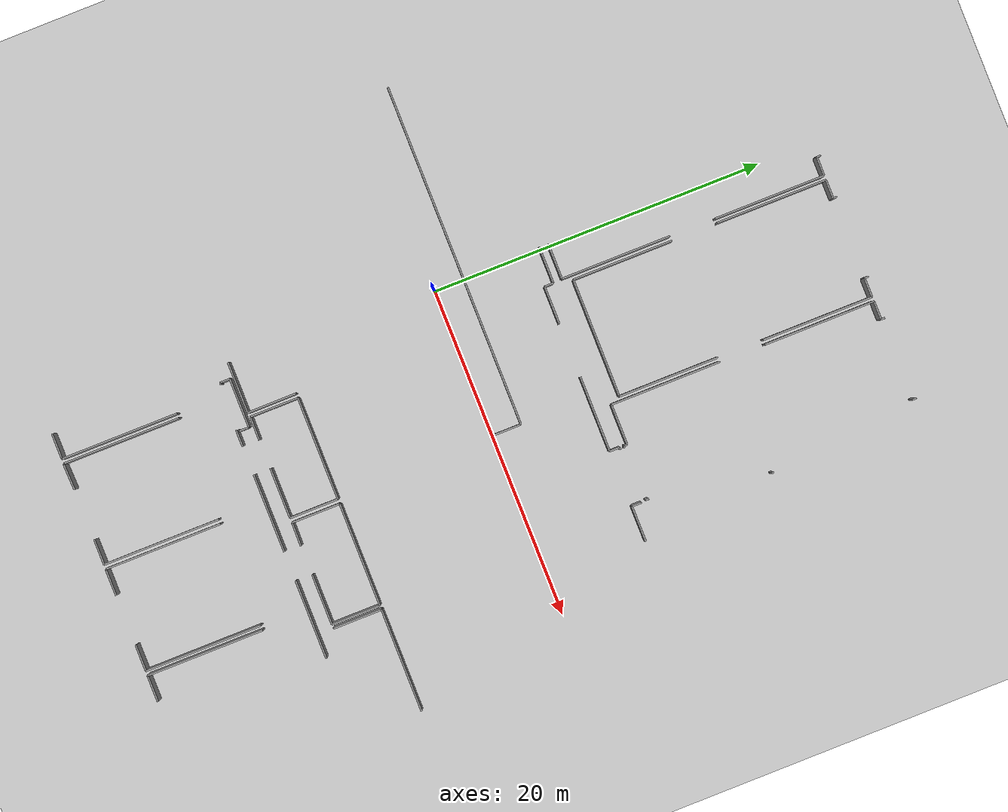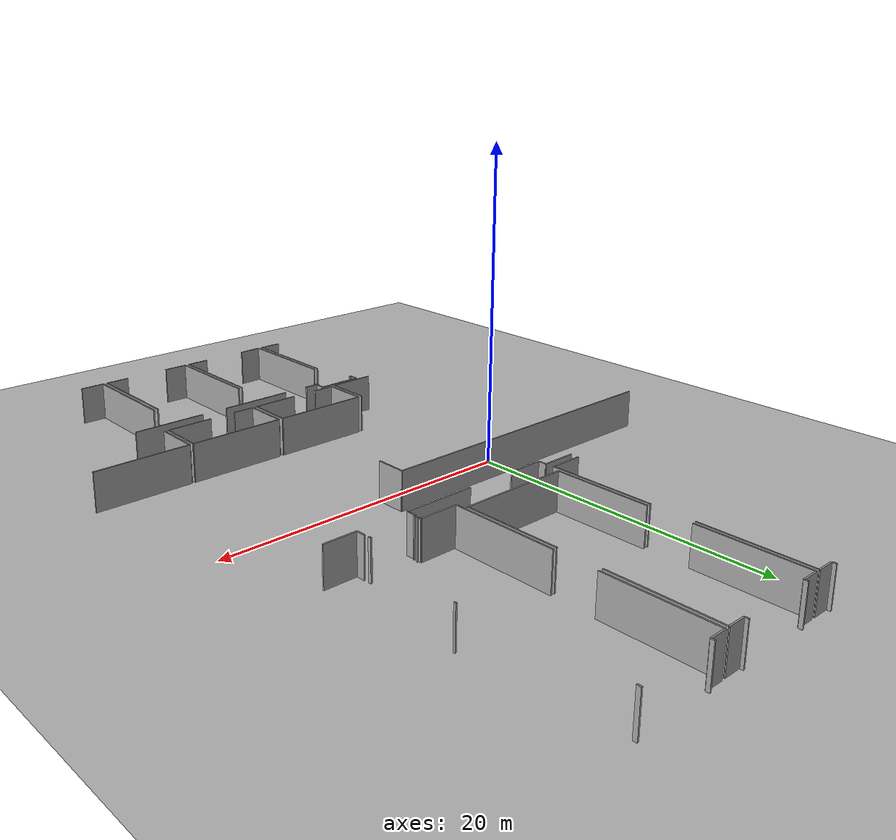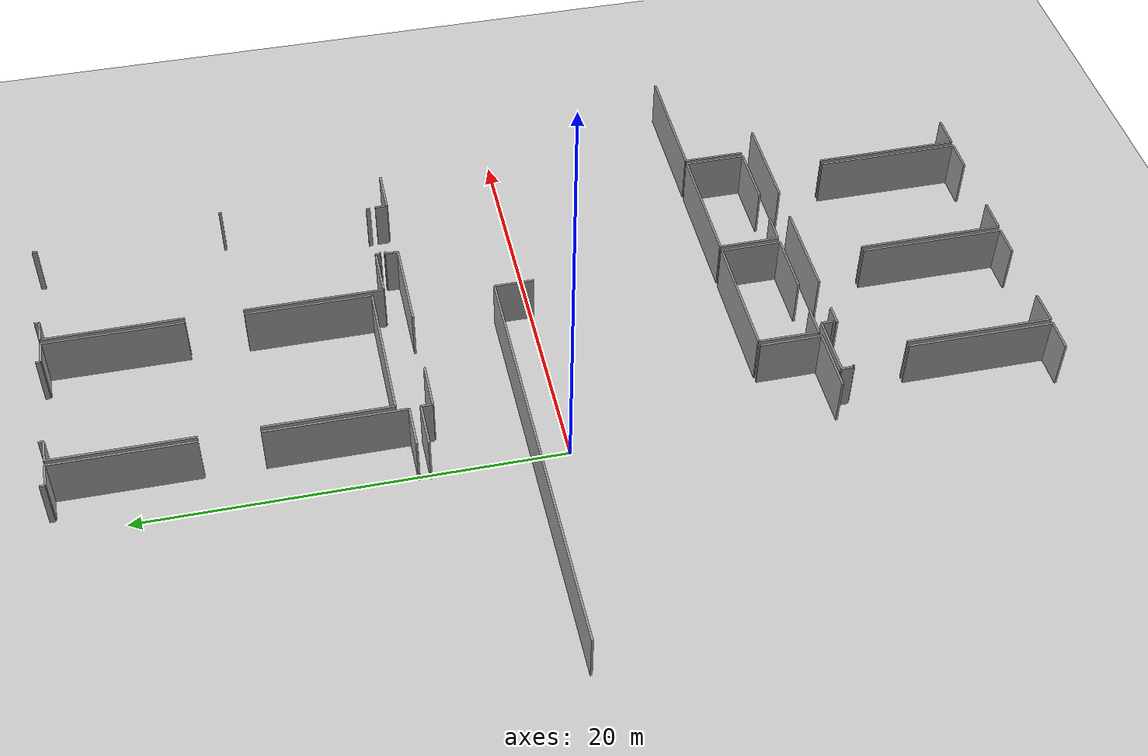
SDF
<sdf version="1.6">
 <world name="default">
  <model name="ground_plane">
   <static>1</static>
   <link name="link">
    <collision name="collision">
     <geometry><plane><normal>0 0 1</normal><size>100 100</size></plane></geometry>
     <surface><friction><ode><mu>100</mu><mu2>50</mu2></ode></friction></surface>
    </collision>
    <visual name="visual">
     <cast_shadows>0</cast_shadows>
     <geometry><plane><normal>0 0 1</normal><size>100 100</size></plane></geometry>
     <material>
      <script><uri>file://media/materials/scripts/gazebo.material</uri><name>Gazebo/Grey</name></script>
     </material>
    </visual>
   </link>
  </model>
  <model name="50045230">
   <static>1</static>
   <link name="Wall_23">
    <collision name="Wall_23_Collision">
     <geometry><box><size>0.13432021024 0.1 2.5</size></box></geometry>
     <pose>0.0671601051202 0 1.25 0 0 0</pose>
    </collision>
    <visual name="Wall_23_Visual">
     <pose>0.0671601051202 0 1.25 0 0 0</pose>
     <geometry><box><size>0.13432021024 0.1 2.5</size></box></geometry>
     <material>
      <script><uri>file://media/materials/scripts/gazebo.material</uri><name>Gazebo/Grey</name></script>
      <ambient>1 1 1 1</ambient>
     </material>
    </visual>
    <pose>63.4967689515 -9.15002475656 0 0 0 -1.57079632679</pose>
   </link>
   <link name="Wall_57">
    <collision name="Wall_57_Collision">
     <geometry><box><size>0.254294311069 0.1 2.5</size></box></geometry>
     <pose>0.127147155535 0 1.25 0 0 0</pose>
    </collision>
    <visual name="Wall_57_Visual">
     <pose>0.127147155535 0 1.25 0 0 0</pose>
     <geometry><box><size>0.254294311069 0.1 2.5</size></box></geometry>
     <material>
      <script><uri>file://media/materials/scripts/gazebo.material</uri><name>Gazebo/Grey</name></script>
      <ambient>1 1 1 1</ambient>
     </material>
    </visual>
    <pose>47.6539667627 -0.000507826881815 0 0 0 -1.57079632679</pose>
   </link>
   <link name="Wall_58">
    <collision name="Wall_58_Collision">
     <geometry><box><size>1.14248352737 0.1 2.5</size></box></geometry>
     <pose>0.571241763683 0 1.25 0 0 0</pose>
    </collision>
    <visual name="Wall_58_Visual">
     <pose>0.571241763683 0 1.25 0 0 0</pose>
     <geometry><box><size>1.14248352737 0.1 2.5</size></box></geometry>
     <material>
      <script><uri>file://media/materials/scripts/gazebo.material</uri><name>Gazebo/Grey</name></script>
      <ambient>1 1 1 1</ambient>
     </material>
    </visual>
    <pose>47.6539667627 -0.254802137951 0 0 0 0.0</pose>
   </link>
   <link name="Wall_59">
    <collision name="Wall_59_Collision">
     <geometry><box><size>6.68528773909 0.1 2.5</size></box></geometry>
     <pose>3.34264386955 0 1.25 0 0 0</pose>
    </collision>
    <visual name="Wall_59_Visual">
     <pose>3.34264386955 0 1.25 0 0 0</pose>
     <geometry><box><size>6.68528773909 0.1 2.5</size></box></geometry>
     <material>
      <script><uri>file://media/materials/scripts/gazebo.material</uri><name>Gazebo/Grey</name></script>
      <ambient>1 1 1 1</ambient>
     </material>
    </visual>
    <pose>48.7964502901 -0.254802137951 0 0 0 -1.57127108843</pose>
   </link>
   <link name="Wall_60">
    <collision name="Wall_60_Collision">
     <geometry><box><size>6.66890956873 0.1 2.5</size></box></geometry>
     <pose>3.33445478436 0 1.25 0 0 0</pose>
    </collision>
    <visual name="Wall_60_Visual">
     <pose>3.33445478436 0 1.25 0 0 0</pose>
     <geometry><box><size>6.66890956873 0.1 2.5</size></box></geometry>
     <material>
      <script><uri>file://media/materials/scripts/gazebo.material</uri><name>Gazebo/Grey</name></script>
      <ambient>1 1 1 1</ambient>
     </material>
    </visual>
    <pose>49.0600124418 -6.92282300964 0 0 0 1.57079632679</pose>
   </link>
   <link name="Wall_61">
    <collision name="Wall_61_Collision">
     <geometry><box><size>1.12788350451 0.1 2.5</size></box></geometry>
     <pose>0.563941752257 0 1.25 0 0 0</pose>
    </collision>
    <visual name="Wall_61_Visual">
     <pose>0.563941752257 0 1.25 0 0 0</pose>
     <geometry><box><size>1.12788350451 0.1 2.5</size></box></geometry>
     <material>
      <script><uri>file://media/materials/scripts/gazebo.material</uri><name>Gazebo/Grey</name></script>
      <ambient>1 1 1 1</ambient>
     </material>
    </visual>
    <pose>49.0600124418 -0.253913440908 0 0 0 0.0</pose>
   </link>
   <link name="Wall_62">
    <collision name="Wall_62_Collision">
     <geometry><box><size>0.233600365635 0.1 2.5</size></box></geometry>
     <pose>0.116800182818 0 1.25 0 0 0</pose>
    </collision>
    <visual name="Wall_62_Visual">
     <pose>0.116800182818 0 1.25 0 0 0</pose>
     <geometry><box><size>0.233600365635 0.1 2.5</size></box></geometry>
     <material>
      <script><uri>file://media/materials/scripts/gazebo.material</uri><name>Gazebo/Grey</name></script>
      <ambient>1 1 1 1</ambient>
     </material>
    </visual>
    <pose>50.1878959463 -0.253913440908 0 0 0 1.57079632679</pose>
   </link>
   <link name="Wall_63">
    <collision name="Wall_63_Collision">
     <geometry><box><size>0.239948201658 0.1 2.5</size></box></geometry>
     <pose>0.119974100829 0 1.25 0 0 0</pose>
    </collision>
    <visual name="Wall_63_Visual">
     <pose>0.119974100829 0 1.25 0 0 0</pose>
     <geometry><box><size>0.239948201658 0.1 2.5</size></box></geometry>
     <material>
      <script><uri>file://media/materials/scripts/gazebo.material</uri><name>Gazebo/Grey</name></script>
      <ambient>1 1 1 1</ambient>
     </material>
    </visual>
    <pose>55.0923610141 -0.0203130752726 0 0 0 -1.57079632679</pose>
   </link>
   <link name="Wall_64">
    <collision name="Wall_64_Collision">
     <geometry><box><size>1.16140007871 0.1 2.5</size></box></geometry>
     <pose>0.580700039357 0 1.25 0 0 0</pose>
    </collision>
    <visual name="Wall_64_Visual">
     <pose>0.580700039357 0 1.25 0 0 0</pose>
     <geometry><box><size>1.16140007871 0.1 2.5</size></box></geometry>
     <material>
      <script><uri>file://media/materials/scripts/gazebo.material</uri><name>Gazebo/Grey</name></script>
      <ambient>1 1 1 1</ambient>
     </material>
    </visual>
    <pose>55.0923610141 -0.260261276931 0 0 0 0.0</pose>
   </link>
   <link name="Wall_65">
    <collision name="Wall_65_Collision">
     <geometry><box><size>6.66256347936 0.1 2.5</size></box></geometry>
     <pose>3.33128173968 0 1.25 0 0 0</pose>
    </collision>
    <visual name="Wall_65_Visual">
     <pose>3.33128173968 0 1.25 0 0 0</pose>
     <geometry><box><size>6.66256347936 0.1 2.5</size></box></geometry>
     <material>
      <script><uri>file://media/materials/scripts/gazebo.material</uri><name>Gazebo/Grey</name></script>
      <ambient>1 1 1 1</ambient>
     </material>
    </visual>
    <pose>56.2537610928 -0.260261276931 0 0 0 -1.57152042583</pose>
   </link>
   <link name="Wall_74">
    <collision name="Wall_74_Collision">
     <geometry><box><size>0.24616908096 0.1 2.5</size></box></geometry>
     <pose>0.12308454048 0 1.25 0 0 0</pose>
    </collision>
    <visual name="Wall_74_Visual">
     <pose>0.12308454048 0 1.25 0 0 0</pose>
     <geometry><box><size>0.24616908096 0.1 2.5</size></box></geometry>
     <material>
      <script><uri>file://media/materials/scripts/gazebo.material</uri><name>Gazebo/Grey</name></script>
      <ambient>1 1 1 1</ambient>
     </material>
    </visual>
    <pose>62.5467518123 -0.266482156233 0 0 0 1.57079632679</pose>
   </link>
   <link name="Wall_75">
    <collision name="Wall_75_Collision">
     <geometry><box><size>0.224459481763 0.1 2.5</size></box></geometry>
     <pose>0.112229740881 0 1.25 0 0 0</pose>
    </collision>
    <visual name="Wall_75_Visual">
     <pose>0.112229740881 0 1.25 0 0 0</pose>
     <geometry><box><size>0.224459481763 0.1 2.5</size></box></geometry>
     <material>
      <script><uri>file://media/materials/scripts/gazebo.material</uri><name>Gazebo/Grey</name></script>
      <ambient>1 1 1 1</ambient>
     </material>
    </visual>
    <pose>57.6242588901 -0.0203130752726 0 0 0 -1.57079632679</pose>
   </link>
   <link name="Wall_76">
    <collision name="Wall_76_Collision">
     <geometry><box><size>1.10185737682 0.1 2.5</size></box></geometry>
     <pose>0.55092868841 0 1.25 0 0 0</pose>
    </collision>
    <visual name="Wall_76_Visual">
     <pose>0.55092868841 0 1.25 0 0 0</pose>
     <geometry><box><size>1.10185737682 0.1 2.5</size></box></geometry>
     <material>
      <script><uri>file://media/materials/scripts/gazebo.material</uri><name>Gazebo/Grey</name></script>
      <ambient>1 1 1 1</ambient>
     </material>
    </visual>
    <pose>57.6242588901 -0.244772557035 0 0 0 3.14159265359</pose>
   </link>
   <link name="Wall_77">
    <collision name="Wall_77_Collision">
     <geometry><box><size>6.69532370318 0.1 2.5</size></box></geometry>
     <pose>3.34766185159 0 1.25 0 0 0</pose>
    </collision>
    <visual name="Wall_77_Visual">
     <pose>3.34766185159 0 1.25 0 0 0</pose>
     <geometry><box><size>6.69532370318 0.1 2.5</size></box></geometry>
     <material>
      <script><uri>file://media/materials/scripts/gazebo.material</uri><name>Gazebo/Grey</name></script>
      <ambient>1 1 1 1</ambient>
     </material>
    </visual>
    <pose>56.5224015133 -0.244772557035 0 0 0 -1.56933625236</pose>
   </link>
   <link name="Wall_113">
    <collision name="Wall_113_Collision">
     <geometry><box><size>6.66941739561 0.1 2.5</size></box></geometry>
     <pose>3.3347086978 0 1.25 0 0 0</pose>
    </collision>
    <visual name="Wall_113_Visual">
     <pose>3.3347086978 0 1.25 0 0 0</pose>
     <geometry><box><size>6.66941739561 0.1 2.5</size></box></geometry>
     <material>
      <script><uri>file://media/materials/scripts/gazebo.material</uri><name>Gazebo/Grey</name></script>
      <ambient>1 1 1 1</ambient>
     </material>
    </visual>
    <pose>56.4990414768 -16.3569769066 0 0 0 1.57079632679</pose>
   </link>
   <link name="Wall_116">
    <collision name="Wall_116_Collision">
     <geometry><box><size>0.20973250219 0.1 2.5</size></box></geometry>
     <pose>0.104866251095 0 1.25 0 0 0</pose>
    </collision>
    <visual name="Wall_116_Visual">
     <pose>0.104866251095 0 1.25 0 0 0</pose>
     <geometry><box><size>0.20973250219 0.1 2.5</size></box></geometry>
     <material>
      <script><uri>file://media/materials/scripts/gazebo.material</uri><name>Gazebo/Grey</name></script>
      <ambient>1 1 1 1</ambient>
     </material>
    </visual>
    <pose>62.2838244442 -16.3459316719 0 0 0 -1.57079632679</pose>
   </link>
   <link name="Wall_117">
    <collision name="Wall_117_Collision">
     <geometry><box><size>0.116927139538 0.1 2.5</size></box></geometry>
     <pose>0.0584635697691 0 1.25 0 0 0</pose>
    </collision>
    <visual name="Wall_117_Visual">
     <pose>0.0584635697691 0 1.25 0 0 0</pose>
     <geometry><box><size>0.116927139538 0.1 2.5</size></box></geometry>
     <material>
      <script><uri>file://media/materials/scripts/gazebo.material</uri><name>Gazebo/Grey</name></script>
      <ambient>1 1 1 1</ambient>
     </material>
    </visual>
    <pose>59.0767707289 -16.5556641741 0 0 0 3.14159265359</pose>
   </link>
   <link name="Wall_118">
    <collision name="Wall_118_Collision">
     <geometry><box><size>0.200083791435 0.1 2.5</size></box></geometry>
     <pose>0.100041895718 0 1.25 0 0 0</pose>
    </collision>
    <visual name="Wall_118_Visual">
     <pose>0.100041895718 0 1.25 0 0 0</pose>
     <geometry><box><size>0.200083791435 0.1 2.5</size></box></geometry>
     <material>
      <script><uri>file://media/materials/scripts/gazebo.material</uri><name>Gazebo/Grey</name></script>
      <ambient>1 1 1 1</ambient>
     </material>
    </visual>
    <pose>58.9598435893 -16.5556641741 0 0 0 1.57079632679</pose>
   </link>
   <link name="Wall_119">
    <collision name="Wall_119_Collision">
     <geometry><box><size>2.46080250883 0.1 2.5</size></box></geometry>
     <pose>1.23040125441 0 1.25 0 0 0</pose>
    </collision>
    <visual name="Wall_119_Visual">
     <pose>1.23040125441 0 1.25 0 0 0</pose>
     <geometry><box><size>2.46080250883 0.1 2.5</size></box></geometry>
     <material>
      <script><uri>file://media/materials/scripts/gazebo.material</uri><name>Gazebo/Grey</name></script>
      <ambient>1 1 1 1</ambient>
     </material>
    </visual>
    <pose>58.9598435893 -16.3555803826 0 0 0 -3.14102514604</pose>
   </link>
   <link name="Wall_120">
    <collision name="Wall_120_Collision">
     <geometry><box><size>6.06078687775 0.1 2.5</size></box></geometry>
     <pose>3.03039343888 0 1.25 0 0 0</pose>
    </collision>
    <visual name="Wall_120_Visual">
     <pose>3.03039343888 0 1.25 0 0 0</pose>
     <geometry><box><size>6.06078687775 0.1 2.5</size></box></geometry>
     <material>
      <script><uri>file://media/materials/scripts/gazebo.material</uri><name>Gazebo/Grey</name></script>
      <ambient>1 1 1 1</ambient>
     </material>
    </visual>
    <pose>49.0582350477 -15.7607881473 0 0 0 1.57079632679</pose>
   </link>
   <link name="Wall_121">
    <collision name="Wall_121_Collision">
     <geometry><box><size>6.0616755748 0.1 2.5</size></box></geometry>
     <pose>3.0308377874 0 1.25 0 0 0</pose>
    </collision>
    <visual name="Wall_121_Visual">
     <pose>3.0308377874 0 1.25 0 0 0</pose>
     <geometry><box><size>6.0616755748 0.1 2.5</size></box></geometry>
     <material>
      <script><uri>file://media/materials/scripts/gazebo.material</uri><name>Gazebo/Grey</name></script>
      <ambient>1 1 1 1</ambient>
     </material>
    </visual>
    <pose>56.2297662727 -9.70000126957 0 0 0 -1.57079632679</pose>
   </link>
   <link name="Wall_122">
    <collision name="Wall_122_Collision">
     <geometry><box><size>7.17153128007 0.1 2.5</size></box></geometry>
     <pose>3.58576564003 0 1.25 0 0 0</pose>
    </collision>
    <visual name="Wall_122_Visual">
     <pose>3.58576564003 0 1.25 0 0 0</pose>
     <geometry><box><size>7.17153128007 0.1 2.5</size></box></geometry>
     <material>
      <script><uri>file://media/materials/scripts/gazebo.material</uri><name>Gazebo/Grey</name></script>
      <ambient>1 1 1 1</ambient>
     </material>
    </visual>
    <pose>56.2297662727 -15.7616768444 0 0 0 3.14146873347</pose>
   </link>
   <link name="Wall_124">
    <collision name="Wall_124_Collision">
     <geometry><box><size>6.64567648888 0.1 2.5</size></box></geometry>
     <pose>3.32283824444 0 1.25 0 0 0</pose>
    </collision>
    <visual name="Wall_124_Visual">
     <pose>3.32283824444 0 1.25 0 0 0</pose>
     <geometry><box><size>6.64567648888 0.1 2.5</size></box></geometry>
     <material>
      <script><uri>file://media/materials/scripts/gazebo.material</uri><name>Gazebo/Grey</name></script>
      <ambient>1 1 1 1</ambient>
     </material>
    </visual>
    <pose>48.7757563447 -9.70000126957 0 0 0 -1.57079632679</pose>
   </link>
   <link name="Wall_125">
    <collision name="Wall_125_Collision">
     <geometry><box><size>2.13693551868 0.1 2.5</size></box></geometry>
     <pose>1.06846775934 0 1.25 0 0 0</pose>
    </collision>
    <visual name="Wall_125_Visual">
     <pose>1.06846775934 0 1.25 0 0 0</pose>
     <geometry><box><size>2.13693551868 0.1 2.5</size></box></geometry>
     <material>
      <script><uri>file://media/materials/scripts/gazebo.material</uri><name>Gazebo/Grey</name></script>
      <ambient>1 1 1 1</ambient>
     </material>
    </visual>
    <pose>48.7757563447 -16.3456777585 0 0 0 3.14159265359</pose>
   </link>
   <link name="Wall_238">
    <collision name="Wall_238_Collision">
     <geometry><box><size>0.98721545825 0.1 2.5</size></box></geometry>
     <pose>0.493607729125 0 1.25 0 0 0</pose>
    </collision>
    <visual name="Wall_238_Visual">
     <pose>0.493607729125 0 1.25 0 0 0</pose>
     <geometry><box><size>0.98721545825 0.1 2.5</size></box></geometry>
     <material>
      <script><uri>file://media/materials/scripts/gazebo.material</uri><name>Gazebo/Grey</name></script>
      <ambient>1 1 1 1</ambient>
     </material>
    </visual>
    <pose>49.9840034532 -36.8174489317 0 0 0 0.0</pose>
   </link>
   <link name="Wall_239">
    <collision name="Wall_239_Collision">
     <geometry><box><size>4.73269262508 0.1 2.5</size></box></geometry>
     <pose>2.36634631254 0 1.25 0 0 0</pose>
    </collision>
    <visual name="Wall_239_Visual">
     <pose>2.36634631254 0 1.25 0 0 0</pose>
     <geometry><box><size>4.73269262508 0.1 2.5</size></box></geometry>
     <material>
      <script><uri>file://media/materials/scripts/gazebo.material</uri><name>Gazebo/Grey</name></script>
      <ambient>1 1 1 1</ambient>
     </material>
    </visual>
    <pose>52.7162390341 -36.8174489317 0 0 0 0.0</pose>
   </link>
   <link name="Wall_240">
    <collision name="Wall_240_Collision">
     <geometry><box><size>4.76646311272 0.1 2.5</size></box></geometry>
     <pose>2.38323155636 0 1.25 0 0 0</pose>
    </collision>
    <visual name="Wall_240_Visual">
     <pose>2.38323155636 0 1.25 0 0 0</pose>
     <geometry><box><size>4.76646311272 0.1 2.5</size></box></geometry>
     <material>
      <script><uri>file://media/materials/scripts/gazebo.material</uri><name>Gazebo/Grey</name></script>
      <ambient>1 1 1 1</ambient>
     </material>
    </visual>
    <pose>59.2269605292 -36.8174489317 0 0 0 0.0</pose>
   </link>
   <link name="Wall_256">
    <collision name="Wall_256_Collision">
     <geometry><box><size>7.06831541128 0.1 2.5</size></box></geometry>
     <pose>3.53415770564 0 1.25 0 0 0</pose>
    </collision>
    <visual name="Wall_256_Visual">
     <pose>3.53415770564 0 1.25 0 0 0</pose>
     <geometry><box><size>7.06831541128 0.1 2.5</size></box></geometry>
     <material>
      <script><uri>file://media/materials/scripts/gazebo.material</uri><name>Gazebo/Grey</name></script>
      <ambient>1 1 1 1</ambient>
     </material>
    </visual>
    <pose>47.8587479528 -39.6037680755 0 0 0 -1.57079632679</pose>
   </link>
   <link name="Wall_257">
    <collision name="Wall_257_Collision">
     <geometry><box><size>1.54937981642 0.1 2.5</size></box></geometry>
     <pose>0.77468990821 0 1.25 0 0 0</pose>
    </collision>
    <visual name="Wall_257_Visual">
     <pose>0.77468990821 0 1.25 0 0 0</pose>
     <geometry><box><size>1.54937981642 0.1 2.5</size></box></geometry>
     <material>
      <script><uri>file://media/materials/scripts/gazebo.material</uri><name>Gazebo/Grey</name></script>
      <ambient>1 1 1 1</ambient>
     </material>
    </visual>
    <pose>47.8587479528 -46.6720834867 0 0 0 3.14159265359</pose>
   </link>
   <link name="Wall_259">
    <collision name="Wall_259_Collision">
     <geometry><box><size>7.08418500133 0.1 2.5</size></box></geometry>
     <pose>3.54209250067 0 1.25 0 0 0</pose>
    </collision>
    <visual name="Wall_259_Visual">
     <pose>3.54209250067 0 1.25 0 0 0</pose>
     <geometry><box><size>7.08418500133 0.1 2.5</size></box></geometry>
     <material>
      <script><uri>file://media/materials/scripts/gazebo.material</uri><name>Gazebo/Grey</name></script>
      <ambient>1 1 1 1</ambient>
     </material>
    </visual>
    <pose>48.1419883962 -46.694681783 0 0 0 1.57079632679</pose>
   </link>
   <link name="Wall_260">
    <collision name="Wall_260_Collision">
     <geometry><box><size>7.03860753869 0.1 2.5</size></box></geometry>
     <pose>3.51930376935 0 1.25 0 0 0</pose>
    </collision>
    <visual name="Wall_260_Visual">
     <pose>3.51930376935 0 1.25 0 0 0</pose>
     <geometry><box><size>7.03860753869 0.1 2.5</size></box></geometry>
     <material>
      <script><uri>file://media/materials/scripts/gazebo.material</uri><name>Gazebo/Grey</name></script>
      <ambient>1 1 1 1</ambient>
     </material>
    </visual>
    <pose>54.360328564 -39.6104967816 0 0 0 -1.57079632679</pose>
   </link>
   <link name="Wall_261">
    <collision name="Wall_261_Collision">
     <geometry><box><size>1.5443015476 0.1 2.5</size></box></geometry>
     <pose>0.772150773801 0 1.25 0 0 0</pose>
    </collision>
    <visual name="Wall_261_Visual">
     <pose>0.772150773801 0 1.25 0 0 0</pose>
     <geometry><box><size>1.5443015476 0.1 2.5</size></box></geometry>
     <material>
      <script><uri>file://media/materials/scripts/gazebo.material</uri><name>Gazebo/Grey</name></script>
      <ambient>1 1 1 1</ambient>
     </material>
    </visual>
    <pose>54.360328564 -46.6491043203 0 0 0 3.14159265359</pose>
   </link>
   <link name="Wall_262">
    <collision name="Wall_262_Collision">
     <geometry><box><size>1.59446621252 0.1 2.5</size></box></geometry>
     <pose>0.797233106262 0 1.25 0 0 0</pose>
    </collision>
    <visual name="Wall_262_Visual">
     <pose>0.797233106262 0 1.25 0 0 0</pose>
     <geometry><box><size>1.59446621252 0.1 2.5</size></box></geometry>
     <material>
      <script><uri>file://media/materials/scripts/gazebo.material</uri><name>Gazebo/Grey</name></script>
      <ambient>1 1 1 1</ambient>
     </material>
    </visual>
    <pose>49.7358030647 -46.6491043203 0 0 0 -3.11300398148</pose>
   </link>
   <link name="Wall_263">
    <collision name="Wall_263_Collision">
     <geometry><box><size>1.58975205352 0.1 2.5</size></box></geometry>
     <pose>0.794876026762 0 1.25 0 0 0</pose>
    </collision>
    <visual name="Wall_263_Visual">
     <pose>0.794876026762 0 1.25 0 0 0</pose>
     <geometry><box><size>1.58975205352 0.1 2.5</size></box></geometry>
     <material>
      <script><uri>file://media/materials/scripts/gazebo.material</uri><name>Gazebo/Grey</name></script>
      <ambient>1 1 1 1</ambient>
     </material>
    </visual>
    <pose>60.8818413803 -46.6610382521 0 0 0 3.14159265359</pose>
   </link>
   <link name="Wall_264">
    <collision name="Wall_264_Collision">
     <geometry><box><size>1.61184252288 0.1 2.5</size></box></geometry>
     <pose>0.805921261442 0 1.25 0 0 0</pose>
    </collision>
    <visual name="Wall_264_Visual">
     <pose>0.805921261442 0 1.25 0 0 0</pose>
     <geometry><box><size>1.61184252288 0.1 2.5</size></box></geometry>
     <material>
      <script><uri>file://media/materials/scripts/gazebo.material</uri><name>Gazebo/Grey</name></script>
      <ambient>1 1 1 1</ambient>
     </material>
    </visual>
    <pose>56.2451280359 -46.6610382521 0 0 0 3.14159265359</pose>
   </link>
   <link name="Wall_265">
    <collision name="Wall_265_Collision">
     <geometry><box><size>7.06069800805 0.1 2.5</size></box></geometry>
     <pose>3.53034900402 0 1.25 0 0 0</pose>
    </collision>
    <visual name="Wall_265_Visual">
     <pose>3.53034900402 0 1.25 0 0 0</pose>
     <geometry><box><size>7.06069800805 0.1 2.5</size></box></geometry>
     <material>
      <script><uri>file://media/materials/scripts/gazebo.material</uri><name>Gazebo/Grey</name></script>
      <ambient>1 1 1 1</ambient>
     </material>
    </visual>
    <pose>54.633285513 -46.6610382521 0 0 0 1.57079632679</pose>
   </link>
   <link name="Wall_266">
    <collision name="Wall_266_Collision">
     <geometry><box><size>7.06070042323 0.1 2.5</size></box></geometry>
     <pose>3.53035021161 0 1.25 0 0 0</pose>
    </collision>
    <visual name="Wall_266_Visual">
     <pose>3.53035021161 0 1.25 0 0 0</pose>
     <geometry><box><size>7.06070042323 0.1 2.5</size></box></geometry>
     <material>
      <script><uri>file://media/materials/scripts/gazebo.material</uri><name>Gazebo/Grey</name></script>
      <ambient>1 1 1 1</ambient>
     </material>
    </visual>
    <pose>60.8760013711 -39.600340244 0 0 0 -1.569969212</pose>
   </link>
   <link name="Wall_268">
    <collision name="Wall_268_Collision">
     <geometry><box><size>1.59356075514 0.1 2.5</size></box></geometry>
     <pose>0.796780377569 0 1.25 0 0 0</pose>
    </collision>
    <visual name="Wall_268_Visual">
     <pose>0.796780377569 0 1.25 0 0 0</pose>
     <geometry><box><size>1.59356075514 0.1 2.5</size></box></geometry>
     <material>
      <script><uri>file://media/materials/scripts/gazebo.material</uri><name>Gazebo/Grey</name></script>
      <ambient>1 1 1 1</ambient>
     </material>
    </visual>
    <pose>62.757626925 -46.6699252225 0 0 0 3.14159265359</pose>
   </link>
   <link name="Wall_269">
    <collision name="Wall_269_Collision">
     <geometry><box><size>7.05815887364 0.1 2.5</size></box></geometry>
     <pose>3.52907943682 0 1.25 0 0 0</pose>
    </collision>
    <visual name="Wall_269_Visual">
     <pose>3.52907943682 0 1.25 0 0 0</pose>
     <geometry><box><size>7.05815887364 0.1 2.5</size></box></geometry>
     <material>
      <script><uri>file://media/materials/scripts/gazebo.material</uri><name>Gazebo/Grey</name></script>
      <ambient>1 1 1 1</ambient>
     </material>
    </visual>
    <pose>61.1640661698 -46.6699252225 0 0 0 1.57079632679</pose>
   </link>
   <link name="Wall_306">
    <collision name="Wall_306_Collision">
     <geometry><box><size>2.96075767771 0.1 2.5</size></box></geometry>
     <pose>1.48037883885 0 1.25 0 0 0</pose>
    </collision>
    <visual name="Wall_306_Visual">
     <pose>1.48037883885 0 1.25 0 0 0</pose>
     <geometry><box><size>2.96075767771 0.1 2.5</size></box></geometry>
     <material>
      <script><uri>file://media/materials/scripts/gazebo.material</uri><name>Gazebo/Grey</name></script>
      <ambient>1 1 1 1</ambient>
     </material>
    </visual>
    <pose>62.5598283545 -35.8221082433 0 0 0 1.57079632679</pose>
   </link>
   <link name="Wall_307">
    <collision name="Wall_307_Collision">
     <geometry><box><size>6.23751063263 0.1 2.5</size></box></geometry>
     <pose>3.11875531631 0 1.25 0 0 0</pose>
    </collision>
    <visual name="Wall_307_Visual">
     <pose>3.11875531631 0 1.25 0 0 0</pose>
     <geometry><box><size>6.23751063263 0.1 2.5</size></box></geometry>
     <material>
      <script><uri>file://media/materials/scripts/gazebo.material</uri><name>Gazebo/Grey</name></script>
      <ambient>1 1 1 1</ambient>
     </material>
    </visual>
    <pose>62.5598283545 -32.8613505656 0 0 0 0.0</pose>
   </link>
   <link name="Wall_311">
    <collision name="Wall_311_Collision">
     <geometry><box><size>2.92559066614 0.1 2.5</size></box></geometry>
     <pose>1.46279533307 0 1.25 0 0 0</pose>
    </collision>
    <visual name="Wall_311_Visual">
     <pose>1.46279533307 0 1.25 0 0 0</pose>
     <geometry><box><size>2.92559066614 0.1 2.5</size></box></geometry>
     <material>
      <script><uri>file://media/materials/scripts/gazebo.material</uri><name>Gazebo/Grey</name></script>
      <ambient>1 1 1 1</ambient>
     </material>
    </visual>
    <pose>56.0685312377 -35.7869412317 0 0 0 1.57079632679</pose>
   </link>
   <link name="Wall_312">
    <collision name="Wall_312_Collision">
     <geometry><box><size>6.24754021354 0.1 2.5</size></box></geometry>
     <pose>3.12377010677 0 1.25 0 0 0</pose>
    </collision>
    <visual name="Wall_312_Visual">
     <pose>3.12377010677 0 1.25 0 0 0</pose>
     <geometry><box><size>6.24754021354 0.1 2.5</size></box></geometry>
     <material>
      <script><uri>file://media/materials/scripts/gazebo.material</uri><name>Gazebo/Grey</name></script>
      <ambient>1 1 1 1</ambient>
     </material>
    </visual>
    <pose>56.0685312377 -32.8613505656 0 0 0 0.0</pose>
   </link>
   <link name="Wall_313">
    <collision name="Wall_313_Collision">
     <geometry><box><size>2.94717330862 0.1 2.5</size></box></geometry>
     <pose>1.47358665431 0 1.25 0 0 0</pose>
    </collision>
    <visual name="Wall_313_Visual">
     <pose>1.47358665431 0 1.25 0 0 0</pose>
     <geometry><box><size>2.94717330862 0.1 2.5</size></box></geometry>
     <material>
      <script><uri>file://media/materials/scripts/gazebo.material</uri><name>Gazebo/Grey</name></script>
      <ambient>1 1 1 1</ambient>
     </material>
    </visual>
    <pose>62.3160714512 -32.8613505656 0 0 0 -1.57079632679</pose>
   </link>
   <link name="Wall_314">
    <collision name="Wall_314_Collision">
     <geometry><box><size>3.06232305407 0.1 2.5</size></box></geometry>
     <pose>1.53116152704 0 1.25 0 0 0</pose>
    </collision>
    <visual name="Wall_314_Visual">
     <pose>1.53116152704 0 1.25 0 0 0</pose>
     <geometry><box><size>3.06232305407 0.1 2.5</size></box></geometry>
     <material>
      <script><uri>file://media/materials/scripts/gazebo.material</uri><name>Gazebo/Grey</name></script>
      <ambient>1 1 1 1</ambient>
     </material>
    </visual>
    <pose>62.3160714512 -35.8085238742 0 0 0 3.14159265359</pose>
   </link>
   <link name="Wall_315">
    <collision name="Wall_315_Collision">
     <geometry><box><size>1.42233294069 0.1 2.5</size></box></geometry>
     <pose>0.711166470347 0 1.25 0 0 0</pose>
    </collision>
    <visual name="Wall_315_Visual">
     <pose>0.711166470347 0 1.25 0 0 0</pose>
     <geometry><box><size>1.42233294069 0.1 2.5</size></box></geometry>
     <material>
      <script><uri>file://media/materials/scripts/gazebo.material</uri><name>Gazebo/Grey</name></script>
      <ambient>1 1 1 1</ambient>
     </material>
    </visual>
    <pose>57.4907004202 -35.8085238742 0 0 0 3.12641795701</pose>
   </link>
   <link name="Wall_316">
    <collision name="Wall_316_Collision">
     <geometry><box><size>2.92559066614 0.1 2.5</size></box></geometry>
     <pose>1.46279533307 0 1.25 0 0 0</pose>
    </collision>
    <visual name="Wall_316_Visual">
     <pose>1.46279533307 0 1.25 0 0 0</pose>
     <geometry><box><size>2.92559066614 0.1 2.5</size></box></geometry>
     <material>
      <script><uri>file://media/materials/scripts/gazebo.material</uri><name>Gazebo/Grey</name></script>
      <ambient>1 1 1 1</ambient>
     </material>
    </visual>
    <pose>49.5660619295 -35.7869412317 0 0 0 1.57079632679</pose>
   </link>
   <link name="Wall_317">
    <collision name="Wall_317_Collision">
     <geometry><box><size>6.21542016327 0.1 2.5</size></box></geometry>
     <pose>3.10771008163 0 1.25 0 0 0</pose>
    </collision>
    <visual name="Wall_317_Visual">
     <pose>3.10771008163 0 1.25 0 0 0</pose>
     <geometry><box><size>6.21542016327 0.1 2.5</size></box></geometry>
     <material>
      <script><uri>file://media/materials/scripts/gazebo.material</uri><name>Gazebo/Grey</name></script>
      <ambient>1 1 1 1</ambient>
     </material>
    </visual>
    <pose>49.5660619295 -32.8613505656 0 0 0 0.0</pose>
   </link>
   <link name="Wall_318">
    <collision name="Wall_318_Collision">
     <geometry><box><size>2.93663590082 0.1 2.5</size></box></geometry>
     <pose>1.46831795041 0 1.25 0 0 0</pose>
    </collision>
    <visual name="Wall_318_Visual">
     <pose>1.46831795041 0 1.25 0 0 0</pose>
     <geometry><box><size>2.93663590082 0.1 2.5</size></box></geometry>
     <material>
      <script><uri>file://media/materials/scripts/gazebo.material</uri><name>Gazebo/Grey</name></script>
      <ambient>1 1 1 1</ambient>
     </material>
    </visual>
    <pose>55.7814820928 -32.8613505656 0 0 0 -1.57079632679</pose>
   </link>
   <link name="Wall_319">
    <collision name="Wall_319_Collision">
     <geometry><box><size>3.04962738203 0.1 2.5</size></box></geometry>
     <pose>1.52481369101 0 1.25 0 0 0</pose>
    </collision>
    <visual name="Wall_319_Visual">
     <pose>1.52481369101 0 1.25 0 0 0</pose>
     <geometry><box><size>3.04962738203 0.1 2.5</size></box></geometry>
     <material>
      <script><uri>file://media/materials/scripts/gazebo.material</uri><name>Gazebo/Grey</name></script>
      <ambient>1 1 1 1</ambient>
     </material>
    </visual>
    <pose>55.7814820928 -35.7979864664 0 0 0 3.14159265359</pose>
   </link>
   <link name="Wall_320">
    <collision name="Wall_320_Collision">
     <geometry><box><size>1.42233902601 0.1 2.5</size></box></geometry>
     <pose>0.711169513007 0 1.25 0 0 0</pose>
    </collision>
    <visual name="Wall_320_Visual">
     <pose>0.711169513007 0 1.25 0 0 0</pose>
     <geometry><box><size>1.42233902601 0.1 2.5</size></box></geometry>
     <material>
      <script><uri>file://media/materials/scripts/gazebo.material</uri><name>Gazebo/Grey</name></script>
      <ambient>1 1 1 1</ambient>
     </material>
    </visual>
    <pose>50.9883580687 -35.7979864664 0 0 0 3.13382703267</pose>
   </link>
   <link name="Wall_321">
    <collision name="Wall_321_Collision">
     <geometry><box><size>3.09076135945 0.1 2.5</size></box></geometry>
     <pose>1.54538067973 0 1.25 0 0 0</pose>
    </collision>
    <visual name="Wall_321_Visual">
     <pose>1.54538067973 0 1.25 0 0 0</pose>
     <geometry><box><size>3.09076135945 0.1 2.5</size></box></geometry>
     <material>
      <script><uri>file://media/materials/scripts/gazebo.material</uri><name>Gazebo/Grey</name></script>
      <ambient>1 1 1 1</ambient>
     </material>
    </visual>
    <pose>49.3030076047 -35.8367082662 0 0 0 3.14159265359</pose>
   </link>
   <link name="Wall_325">
    <collision name="Wall_325_Collision">
     <geometry><box><size>2.97538988107 0.1 2.5</size></box></geometry>
     <pose>1.48769494053 0 1.25 0 0 0</pose>
    </collision>
    <visual name="Wall_325_Visual">
     <pose>1.48769494053 0 1.25 0 0 0</pose>
     <geometry><box><size>2.97538988107 0.1 2.5</size></box></geometry>
     <material>
      <script><uri>file://media/materials/scripts/gazebo.material</uri><name>Gazebo/Grey</name></script>
      <ambient>1 1 1 1</ambient>
     </material>
    </visual>
    <pose>49.2891693222 -32.8613505656 0 0 0 -1.566145396</pose>
   </link>
   <link name="Wall_369">
    <collision name="Wall_369_Collision">
     <geometry><box><size>2.21894956009 0.1 2.5</size></box></geometry>
     <pose>1.10947478005 0 1.25 0 0 0</pose>
    </collision>
    <visual name="Wall_369_Visual">
     <pose>1.10947478005 0 1.25 0 0 0</pose>
     <geometry><box><size>2.21894956009 0.1 2.5</size></box></geometry>
     <material>
      <script><uri>file://media/materials/scripts/gazebo.material</uri><name>Gazebo/Grey</name></script>
      <ambient>1 1 1 1</ambient>
     </material>
    </visual>
    <pose>46.607462516 -16.8868942577 0 0 0 0.0</pose>
   </link>
   <link name="Wall_370">
    <collision name="Wall_370_Collision">
     <geometry><box><size>0.540962585854 0.1 2.5</size></box></geometry>
     <pose>0.270481292927 0 1.25 0 0 0</pose>
    </collision>
    <visual name="Wall_370_Visual">
     <pose>0.270481292927 0 1.25 0 0 0</pose>
     <geometry><box><size>0.540962585854 0.1 2.5</size></box></geometry>
     <material>
      <script><uri>file://media/materials/scripts/gazebo.material</uri><name>Gazebo/Grey</name></script>
      <ambient>1 1 1 1</ambient>
     </material>
    </visual>
    <pose>48.8264120761 -16.8868942577 0 0 0 -1.57079632679</pose>
   </link>
   <link name="Wall_371">
    <collision name="Wall_371_Collision">
     <geometry><box><size>2.29626620285 0.1 2.5</size></box></geometry>
     <pose>1.14813310143 0 1.25 0 0 0</pose>
    </collision>
    <visual name="Wall_371_Visual">
     <pose>1.14813310143 0 1.25 0 0 0</pose>
     <geometry><box><size>2.29626620285 0.1 2.5</size></box></geometry>
     <material>
      <script><uri>file://media/materials/scripts/gazebo.material</uri><name>Gazebo/Grey</name></script>
      <ambient>1 1 1 1</ambient>
     </material>
    </visual>
    <pose>48.8264120761 -17.4278568436 0 0 0 0.0</pose>
   </link>
   <link name="Wall_372">
    <collision name="Wall_372_Collision">
     <geometry><box><size>4.55596887021 0.1 2.5</size></box></geometry>
     <pose>2.27798443511 0 1.25 0 0 0</pose>
    </collision>
    <visual name="Wall_372_Visual">
     <pose>2.27798443511 0 1.25 0 0 0</pose>
     <geometry><box><size>4.55596887021 0.1 2.5</size></box></geometry>
     <material>
      <script><uri>file://media/materials/scripts/gazebo.material</uri><name>Gazebo/Grey</name></script>
      <ambient>1 1 1 1</ambient>
     </material>
    </visual>
    <pose>54.3827999035 -17.4278568436 0 0 0 0.0</pose>
   </link>
   <link name="Wall_373">
    <collision name="Wall_373_Collision">
     <geometry><box><size>0.618279228611 0.1 2.5</size></box></geometry>
     <pose>0.309139614305 0 1.25 0 0 0</pose>
    </collision>
    <visual name="Wall_373_Visual">
     <pose>0.309139614305 0 1.25 0 0 0</pose>
     <geometry><box><size>0.618279228611 0.1 2.5</size></box></geometry>
     <material>
      <script><uri>file://media/materials/scripts/gazebo.material</uri><name>Gazebo/Grey</name></script>
      <ambient>1 1 1 1</ambient>
     </material>
    </visual>
    <pose>58.9387687737 -17.4278568436 0 0 0 1.57079632679</pose>
   </link>
   <link name="Wall_374">
    <collision name="Wall_374_Collision">
     <geometry><box><size>0.132542816154 0.1 2.5</size></box></geometry>
     <pose>0.066271408077 0 1.25 0 0 0</pose>
    </collision>
    <visual name="Wall_374_Visual">
     <pose>0.066271408077 0 1.25 0 0 0</pose>
     <geometry><box><size>0.132542816154 0.1 2.5</size></box></geometry>
     <material>
      <script><uri>file://media/materials/scripts/gazebo.material</uri><name>Gazebo/Grey</name></script>
      <ambient>1 1 1 1</ambient>
     </material>
    </visual>
    <pose>58.9387687737 -16.809577615 0 0 0 0.0</pose>
   </link>
   <link name="Wall_375">
    <collision name="Wall_375_Collision">
     <geometry><box><size>0.589460053068 0.1 2.5</size></box></geometry>
     <pose>0.294730026534 0 1.25 0 0 0</pose>
    </collision>
    <visual name="Wall_375_Visual">
     <pose>0.294730026534 0 1.25 0 0 0</pose>
     <geometry><box><size>0.589460053068 0.1 2.5</size></box></geometry>
     <material>
      <script><uri>file://media/materials/scripts/gazebo.material</uri><name>Gazebo/Grey</name></script>
      <ambient>1 1 1 1</ambient>
     </material>
    </visual>
    <pose>62.3323219115 -16.809577615 0 0 0 -1.57079632679</pose>
   </link>
   <link name="Wall_376">
    <collision name="Wall_376_Collision">
     <geometry><box><size>2.16194599261 0.1 2.5</size></box></geometry>
     <pose>1.08097299631 0 1.25 0 0 0</pose>
    </collision>
    <visual name="Wall_376_Visual">
     <pose>1.08097299631 0 1.25 0 0 0</pose>
     <geometry><box><size>2.16194599261 0.1 2.5</size></box></geometry>
     <material>
      <script><uri>file://media/materials/scripts/gazebo.material</uri><name>Gazebo/Grey</name></script>
      <ambient>1 1 1 1</ambient>
     </material>
    </visual>
    <pose>62.3323219115 -17.3990376681 0 0 0 0.0</pose>
   </link>
   <link name="Wall_395">
    <collision name="Wall_395_Collision">
     <geometry><box><size>1.91260299364 0.1 2.5</size></box></geometry>
     <pose>0.95630149682 0 1.25 0 0 0</pose>
    </collision>
    <visual name="Wall_395_Visual">
     <pose>0.95630149682 0 1.25 0 0 0</pose>
     <geometry><box><size>1.91260299364 0.1 2.5</size></box></geometry>
     <material>
      <script><uri>file://media/materials/scripts/gazebo.material</uri><name>Gazebo/Grey</name></script>
      <ambient>1 1 1 1</ambient>
     </material>
    </visual>
    <pose>55.6540175454 -23.4850889332 0 0 0 1.57079632679</pose>
   </link>
   <link name="Wall_396">
    <collision name="Wall_396_Collision">
     <geometry><box><size>20.6901367324 0.1 2.5</size></box></geometry>
     <pose>10.3450683662 0 1.25 0 0 0</pose>
    </collision>
    <visual name="Wall_396_Visual">
     <pose>10.3450683662 0 1.25 0 0 0</pose>
     <geometry><box><size>20.6901367324 0.1 2.5</size></box></geometry>
     <material>
      <script><uri>file://media/materials/scripts/gazebo.material</uri><name>Gazebo/Grey</name></script>
      <ambient>1 1 1 1</ambient>
     </material>
    </visual>
    <pose>55.6540175454 -21.5724859395 0 0 0 3.14159265359</pose>
   </link>
   <link name="Wall_398">
    <collision name="Wall_398_Collision">
     <geometry><box><size>0.596696586134 0.1 2.5</size></box></geometry>
     <pose>0.298348293067 0 1.25 0 0 0</pose>
    </collision>
    <visual name="Wall_398_Visual">
     <pose>0.298348293067 0 1.25 0 0 0</pose>
     <geometry><box><size>0.596696586134 0.1 2.5</size></box></geometry>
     <material>
      <script><uri>file://media/materials/scripts/gazebo.material</uri><name>Gazebo/Grey</name></script>
      <ambient>1 1 1 1</ambient>
     </material>
    </visual>
    <pose>47.1263346325 -36.6777965392 0 0 0 1.57079632679</pose>
   </link>
   <link name="Wall_399">
    <collision name="Wall_399_Collision">
     <geometry><box><size>2.97078725862 0.1 2.5</size></box></geometry>
     <pose>1.48539362931 0 1.25 0 0 0</pose>
    </collision>
    <visual name="Wall_399_Visual">
     <pose>1.48539362931 0 1.25 0 0 0</pose>
     <geometry><box><size>2.97078725862 0.1 2.5</size></box></geometry>
     <material>
      <script><uri>file://media/materials/scripts/gazebo.material</uri><name>Gazebo/Grey</name></script>
      <ambient>1 1 1 1</ambient>
     </material>
    </visual>
    <pose>47.1263346325 -36.081099953 0 0 0 0.0</pose>
   </link>
   <link name="Wall_400">
    <collision name="Wall_400_Collision">
     <geometry><box><size>0.596696586134 0.1 2.5</size></box></geometry>
     <pose>0.298348293067 0 1.25 0 0 0</pose>
    </collision>
    <visual name="Wall_400_Visual">
     <pose>0.298348293067 0 1.25 0 0 0</pose>
     <geometry><box><size>0.596696586134 0.1 2.5</size></box></geometry>
     <material>
      <script><uri>file://media/materials/scripts/gazebo.material</uri><name>Gazebo/Grey</name></script>
      <ambient>1 1 1 1</ambient>
     </material>
    </visual>
    <pose>50.0971218911 -36.081099953 0 0 0 -1.57079632679</pose>
   </link>
   <link name="Wall_401">
    <collision name="Wall_401_Collision">
     <geometry><box><size>0.0888697043178 0.1 2.5</size></box></geometry>
     <pose>0.0444348521589 0 1.25 0 0 0</pose>
    </collision>
    <visual name="Wall_401_Visual">
     <pose>0.0444348521589 0 1.25 0 0 0</pose>
     <geometry><box><size>0.0888697043178 0.1 2.5</size></box></geometry>
     <material>
      <script><uri>file://media/materials/scripts/gazebo.material</uri><name>Gazebo/Grey</name></script>
      <ambient>1 1 1 1</ambient>
     </material>
    </visual>
    <pose>50.0971218911 -36.6777965392 0 0 0 3.14159265359</pose>
   </link>
   <link name="Wall_402">
    <collision name="Wall_402_Collision">
     <geometry><box><size>0.113499308086 0.1 2.5</size></box></geometry>
     <pose>0.0567496540429 0 1.25 0 0 0</pose>
    </collision>
    <visual name="Wall_402_Visual">
     <pose>0.0567496540429 0 1.25 0 0 0</pose>
     <geometry><box><size>0.113499308086 0.1 2.5</size></box></geometry>
     <material>
      <script><uri>file://media/materials/scripts/gazebo.material</uri><name>Gazebo/Grey</name></script>
      <ambient>1 1 1 1</ambient>
     </material>
    </visual>
    <pose>47.2398339406 -36.6777965392 0 0 0 3.14159265359</pose>
   </link>
   <pose>-46.75 23.3491252682 0 0 0 0</pose>
  </model>
 </world>
</sdf>
